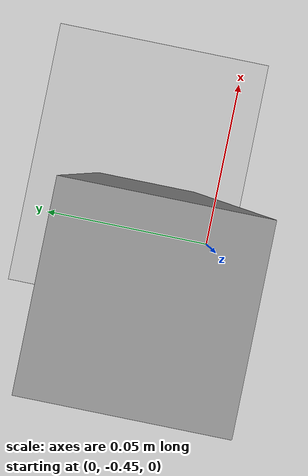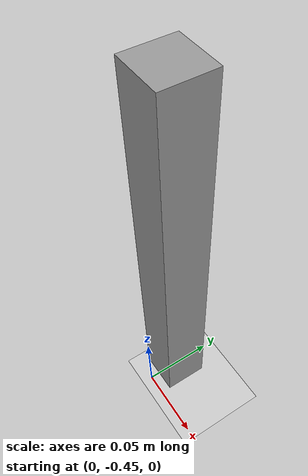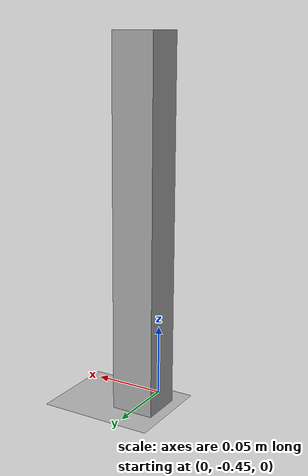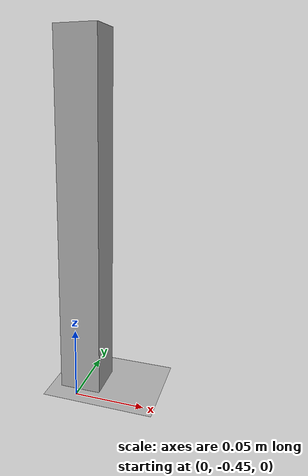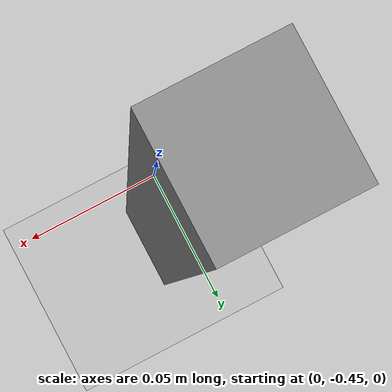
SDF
<sdf version="1.4">
 <world name="default">
  <model name="ground_plane">
   <static>1</static>
   <link name="link">
    <collision name="collision">
     <geometry><plane><normal>0 0 1</normal><size>100 100</size></plane></geometry>
     <surface><friction><ode><mu>100</mu><mu2>50</mu2></ode></friction></surface>
    </collision>
    <visual name="visual">
     <cast_shadows>0</cast_shadows>
     <geometry><plane><normal>0 0 1</normal><size>100 100</size></plane></geometry>
     <material>
      <script><uri>file://media/materials/scripts/gazebo.material</uri><name>Gazebo/Grey</name></script>
     </material>
    </visual>
    <velocity_decay><linear>0</linear><angular>0</angular></velocity_decay>
   </link>
  </model>
  <light name="sun" type="directional">
   <pose>0 0 10 0 -0 0</pose>
   <diffuse>0.8 0.8 0.8 1</diffuse>
   <specular>0.2 0.2 0.2 1</specular>
   <attenuation>
    <range>1000</range>
    <constant>0.9</constant>
    <linear>0.01</linear>
    <quadratic>0.001</quadratic>
   </attenuation>
   <direction>-0.5 0.1 -0.9</direction>
  </light>
  <physics type="ode">
   <real_time_update_rate>1000</real_time_update_rate>
   <gravity>0 0 -9.81</gravity>
   <max_step_size>0.001</max_step_size>
   <real_time_factor>1</real_time_factor>
  </physics>
  <scene><ambient>0.4 0.4 0.4 1</ambient><background>0.7 0.7 0.7 1</background><shadows>1</shadows></scene>
  <spherical_coordinates>
   <surface_model>EARTH_WGS84</surface_model>
   <latitude_deg>0</latitude_deg>
   <longitude_deg>0</longitude_deg>
   <elevation>0</elevation>
   <heading_deg>0</heading_deg>
  </spherical_coordinates>
  <model name="unit_cylinder_1">
   <pose>0 -0.428 0.125 0.0 0.0 0.0000</pose>
   <link name="link">
    <inertial>
     <pose>0 0 -0.12 0 -0 0</pose>
     <mass>0.15</mass>
     <inertia><ixx>1.1e-4</ixx><ixy>0</ixy><ixz>0</ixz><iyy>1.1e-4</iyy><iyz>0</iyz><izz>1e-4</izz></inertia>
    </inertial>
    <collision name="collision">
     <geometry><box><size>0.03 0.03 0.26</size></box></geometry>
     <surface><friction><ode><mu>20</mu><mu2>20</mu2></ode></friction></surface>
    </collision>
    <visual name="visual">
     <geometry><box><size>0.03 0.03 0.26</size></box></geometry>
     <material>
      <script><uri>file://media/materials/scripts/gazebo.material</uri><name>Gazebo/Grey</name></script>
     </material>
    </visual>
    <velocity_decay><linear>0</linear><angular>0</angular></velocity_decay>
   </link>
   <static>0</static>
  </model>
 </world>
</sdf>
